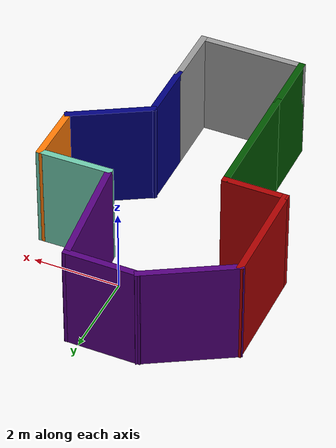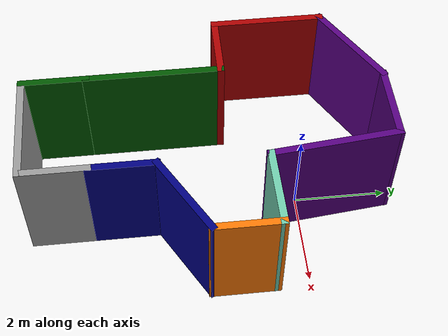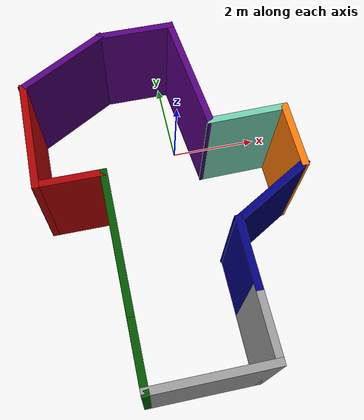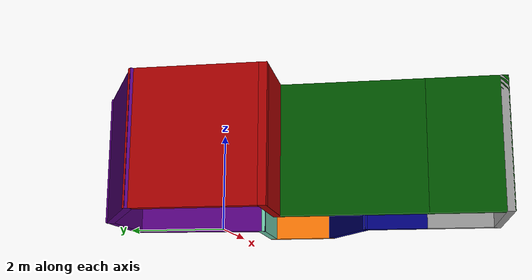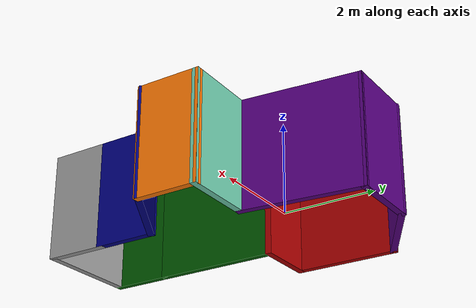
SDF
<?xml version='1.0'?>
<sdf version='1.6'>
  <model name='walls'>
    <pose frame=''>-0.518927 -1.85627 0 0 -0 0</pose>
    <link name='Wall_12'>
      <collision name='Wall_12_Collision'>
        <geometry>
          <box>
            <size>1.75234 0.15 2.5</size>
          </box>
        </geometry>
        <pose frame=''>0 0 1.25 0 -0 0</pose>
      </collision>
      <visual name='Wall_12_Visual'>
        <pose frame=''>0 0 1.25 0 -0 0</pose>
        <geometry>
          <box>
            <size>1.75234 0.15 2.5</size>
          </box>
        </geometry>
        <material>
          <script>
            <uri>file://media/materials/scripts/gazebo.material</uri>
            <name>Gazebo/Grey</name>
          </script>
          <ambient>0.435294 0.796078 0.67451 1</ambient>
        </material>
        <meta>
          <layer>0</layer>
        </meta>
      </visual>
      <pose frame=''>1.85 1.14877 0 0 -0 0.015603</pose>
    </link>
    <link name='Wall_17'>
      <collision name='Wall_17_Collision'>
        <geometry>
          <box>
            <size>1.5 0.15 2.5</size>
          </box>
        </geometry>
        <pose frame=''>0 0 1.25 0 -0 0</pose>
      </collision>
      <visual name='Wall_17_Visual'>
        <pose frame=''>0 0 1.25 0 -0 0</pose>
        <geometry>
          <box>
            <size>1.5 0.15 2.5</size>
          </box>
        </geometry>
        <material>
          <script>
            <uri>file://media/materials/scripts/gazebo.material</uri>
            <name>Gazebo/Grey</name>
          </script>
          <ambient>0.666667 0 0 1</ambient>
        </material>
        <meta>
          <layer>0</layer>
        </meta>
      </visual>
      <pose frame=''>-1.97607 0.386274 0 0 -0 3.14159</pose>
    </link>
    <link name='Wall_18'>
      <collision name='Wall_18_Collision'>
        <geometry>
          <box>
            <size>2.5 0.15 2.5</size>
          </box>
        </geometry>
        <pose frame=''>0 0 1.25 0 -0 0</pose>
      </collision>
      <visual name='Wall_18_Visual'>
        <pose frame=''>0 0 1.25 0 -0 0</pose>
        <geometry>
          <box>
            <size>2.5 0.15 2.5</size>
          </box>
        </geometry>
        <material>
          <script>
            <uri>file://media/materials/scripts/gazebo.material</uri>
            <name>Gazebo/Grey</name>
          </script>
          <ambient>0.666667 0 0 1</ambient>
        </material>
        <meta>
          <layer>0</layer>
        </meta>
      </visual>
      <pose frame=''>-2.65107 1.56127 0 0 -0 1.5708</pose>
    </link>
    <link name='Wall_19'>
      <collision name='Wall_19_Collision'>
        <geometry>
          <box>
            <size>2.25 0.15 2.5</size>
          </box>
        </geometry>
        <pose frame=''>0 0 1.25 0 -0 0</pose>
      </collision>
      <visual name='Wall_19_Visual'>
        <pose frame=''>0 0 1.25 0 -0 0</pose>
        <geometry>
          <box>
            <size>2.25 0.15 2.5</size>
          </box>
        </geometry>
        <material>
          <script>
            <uri>file://media/materials/scripts/gazebo.material</uri>
            <name>Gazebo/Grey</name>
          </script>
          <ambient>0.333333 0 0.498039 1</ambient>
        </material>
        <meta>
          <layer>0</layer>
        </meta>
      </visual>
      <pose frame=''>-1.74175 3.26127 0 0 -0 0.523599</pose>
    </link>
    <link name='Wall_2'>
      <collision name='Wall_2_Collision'>
        <geometry>
          <box>
            <size>3 0.15 2.5</size>
          </box>
        </geometry>
        <pose frame=''>0 0 1.25 0 -0 0</pose>
      </collision>
      <visual name='Wall_2_Visual'>
        <pose frame=''>0 0 1.25 0 -0 0</pose>
        <geometry>
          <box>
            <size>3 0.15 2.5</size>
          </box>
        </geometry>
        <material>
          <script>
            <uri>file://media/materials/scripts/gazebo.material</uri>
            <name>Gazebo/Grey</name>
          </script>
          <ambient>0 0.333333 0 1</ambient>
        </material>
        <meta>
          <layer>0</layer>
        </meta>
      </visual>
      <pose frame=''>-1.30107 -1.03873 0 0 -0 1.5708</pose>
    </link>
    <link name='Wall_20'>
      <collision name='Wall_20_Collision'>
        <geometry>
          <box>
            <size>1.75 0.15 2.5</size>
          </box>
        </geometry>
        <pose frame=''>0 0 1.25 0 -0 0</pose>
      </collision>
      <visual name='Wall_20_Visual'>
        <pose frame=''>0 0 1.25 0 -0 0</pose>
        <geometry>
          <box>
            <size>1.75 0.15 2.5</size>
          </box>
        </geometry>
        <material>
          <script>
            <uri>file://media/materials/scripts/gazebo.material</uri>
            <name>Gazebo/Grey</name>
          </script>
          <ambient>0.333333 0 0.498039 1</ambient>
        </material>
        <meta>
          <layer>0</layer>
        </meta>
      </visual>
      <pose frame=''>-0.03242 3.78627 0 0 -0 0</pose>
    </link>
    <link name='Wall_21'>
      <collision name='Wall_21_Collision'>
        <geometry>
          <box>
            <size>2.81489 0.15 2.5</size>
          </box>
        </geometry>
        <pose frame=''>0 0 1.25 0 -0 0</pose>
      </collision>
      <visual name='Wall_21_Visual'>
        <pose frame=''>0 0 1.25 0 -0 0</pose>
        <geometry>
          <box>
            <size>2.81489 0.15 2.5</size>
          </box>
        </geometry>
        <material>
          <script>
            <uri>file://media/materials/scripts/gazebo.material</uri>
            <name>Gazebo/Grey</name>
          </script>
          <ambient>0.333333 0 0.498039 1</ambient>
        </material>
        <meta>
          <layer>0</layer>
        </meta>
      </visual>
      <pose frame=''>0.908253 2.46127 0 0 0 -1.46502</pose>
    </link>
    <link name='Wall_23'>
      <collision name='Wall_23_Collision'>
        <geometry>
          <box>
            <size>1.5 0.15 2.5</size>
          </box>
        </geometry>
        <pose frame=''>0 0 1.25 0 -0 0</pose>
      </collision>
      <visual name='Wall_23_Visual'>
        <pose frame=''>0 0 1.25 0 -0 0</pose>
        <geometry>
          <box>
            <size>1.5 0.15 2.5</size>
          </box>
        </geometry>
        <material>
          <script>
            <uri>file://media/materials/scripts/gazebo.material</uri>
            <name>Gazebo/Grey</name>
          </script>
          <ambient>0 0.333333 0 1</ambient>
        </material>
        <meta>
          <layer>0</layer>
        </meta>
      </visual>
      <pose frame=''>-1.30107 -3.13873 0 0 0 -1.5708</pose>
    </link>
    <link name='Wall_24'>
      <collision name='Wall_24_Collision'>
        <geometry>
          <box>
            <size>2.5 0.15 2.5</size>
          </box>
        </geometry>
        <pose frame=''>0 0 1.25 0 -0 0</pose>
      </collision>
      <visual name='Wall_24_Visual'>
        <pose frame=''>0 0 1.25 0 -0 0</pose>
        <geometry>
          <box>
            <size>2.5 0.15 2.5</size>
          </box>
        </geometry>
        <material>
          <script>
            <uri>file://media/materials/scripts/gazebo.material</uri>
            <name>Gazebo/Grey</name>
          </script>
          <ambient>0 0 0 1</ambient>
        </material>
        <meta>
          <layer>0</layer>
        </meta>
      </visual>
      <pose frame=''>-0.126073 -3.81373 0 0 -0 0</pose>
    </link>
    <link name='Wall_25'>
      <collision name='Wall_25_Collision'>
        <geometry>
          <box>
            <size>1.5 0.15 2.5</size>
          </box>
        </geometry>
        <pose frame=''>0 0 1.25 0 -0 0</pose>
      </collision>
      <visual name='Wall_25_Visual'>
        <pose frame=''>0 0 1.25 0 -0 0</pose>
        <geometry>
          <box>
            <size>1.5 0.15 2.5</size>
          </box>
        </geometry>
        <material>
          <script>
            <uri>file://media/materials/scripts/gazebo.material</uri>
            <name>Gazebo/Grey</name>
          </script>
          <ambient>0 0 0 1</ambient>
        </material>
        <meta>
          <layer>0</layer>
        </meta>
      </visual>
      <pose frame=''>1.04893 -3.13873 0 0 -0 1.5708</pose>
    </link>
    <link name='Wall_5'>
      <collision name='Wall_5_Collision'>
        <geometry>
          <box>
            <size>1.5 0.15 2.5</size>
          </box>
        </geometry>
        <pose frame=''>0 0 1.25 0 -0 0</pose>
      </collision>
      <visual name='Wall_5_Visual'>
        <pose frame=''>0 0 1.25 0 -0 0</pose>
        <geometry>
          <box>
            <size>1.5 0.15 2.5</size>
          </box>
        </geometry>
        <material>
          <script>
            <uri>file://media/materials/scripts/gazebo.material</uri>
            <name>Gazebo/Grey</name>
          </script>
          <ambient>0 0 0.498039 1</ambient>
        </material>
        <meta>
          <layer>0</layer>
        </meta>
      </visual>
      <pose frame=''>1.04893 -1.78873 0 0 -0 1.5708</pose>
    </link>
    <link name='Wall_6'>
      <collision name='Wall_6_Collision'>
        <geometry>
          <box>
            <size>2 0.15 2.5</size>
          </box>
        </geometry>
        <pose frame=''>0 0 1.25 0 -0 0</pose>
      </collision>
      <visual name='Wall_6_Visual'>
        <pose frame=''>0 0 1.25 0 -0 0</pose>
        <geometry>
          <box>
            <size>2 0.15 2.5</size>
          </box>
        </geometry>
        <material>
          <script>
            <uri>file://media/materials/scripts/gazebo.material</uri>
            <name>Gazebo/Grey</name>
          </script>
          <ambient>0 0 0.498039 1</ambient>
        </material>
        <meta>
          <layer>0</layer>
        </meta>
      </visual>
      <pose frame=''>1.85 -0.651226 0 0 -0 0.523599</pose>
    </link>
    <link name='Wall_7'>
      <collision name='Wall_7_Collision'>
        <geometry>
          <box>
            <size>1.5 0.15 2.5</size>
          </box>
        </geometry>
        <pose frame=''>0 0 1.25 0 -0 0</pose>
      </collision>
      <visual name='Wall_7_Visual'>
        <pose frame=''>0 0 1.25 0 -0 0</pose>
        <geometry>
          <box>
            <size>1.5 0.15 2.5</size>
          </box>
        </geometry>
        <material>
          <script>
            <uri>file://media/materials/scripts/gazebo.material</uri>
            <name>Gazebo/Grey</name>
          </script>
          <ambient>0.996078 0.47451 0.0196078 1</ambient>
        </material>
        <meta>
          <layer>0</layer>
        </meta>
      </visual>
      <pose frame=''>2.65107 0.486274 0 0 -0 1.5708</pose>
    </link>
    <static>1</static>
  </model>
</sdf>
